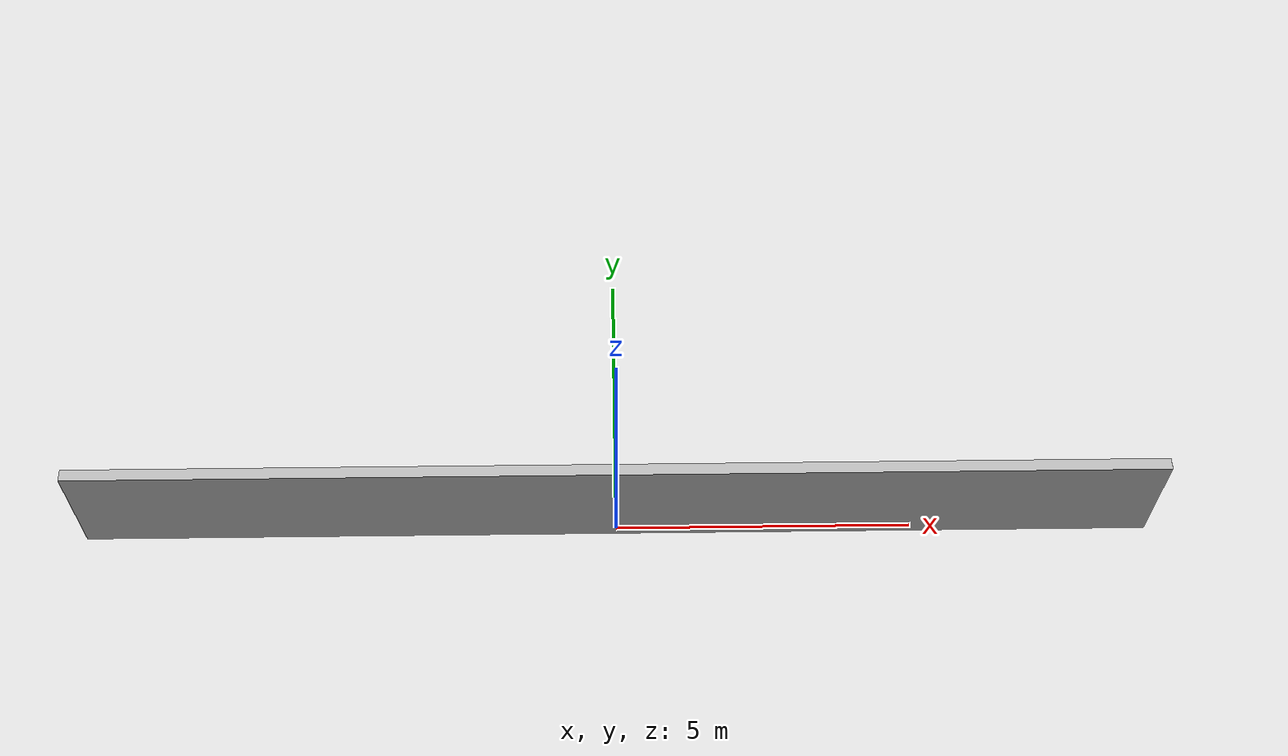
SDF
<?xml version="1.0"?>
<sdf version="1.6">
  <model name="greenhouse_wall">
    <static>true</static>

    <link name="wall_link">

      <!-- Collision -->
      <collision name="collision">
        <geometry>
          <box>
            <size>18 0.2 2</size>
          </box>
        </geometry>
        <pose>0 0 1 0 0 0</pose>
      </collision>

      <!-- Visual -->
      <visual name="visual">
        <geometry>
          <box>
            <size>18 0.2 2</size>
          </box>
        </geometry>
        <pose>0 0 1 0 0 0</pose>
        <material>
          <ambient>0.7 0.7 0.7 1</ambient>
          <diffuse>0.7 0.7 0.7 1</diffuse>
        </material>
      </visual>

    </link>
  </model>
</sdf>
